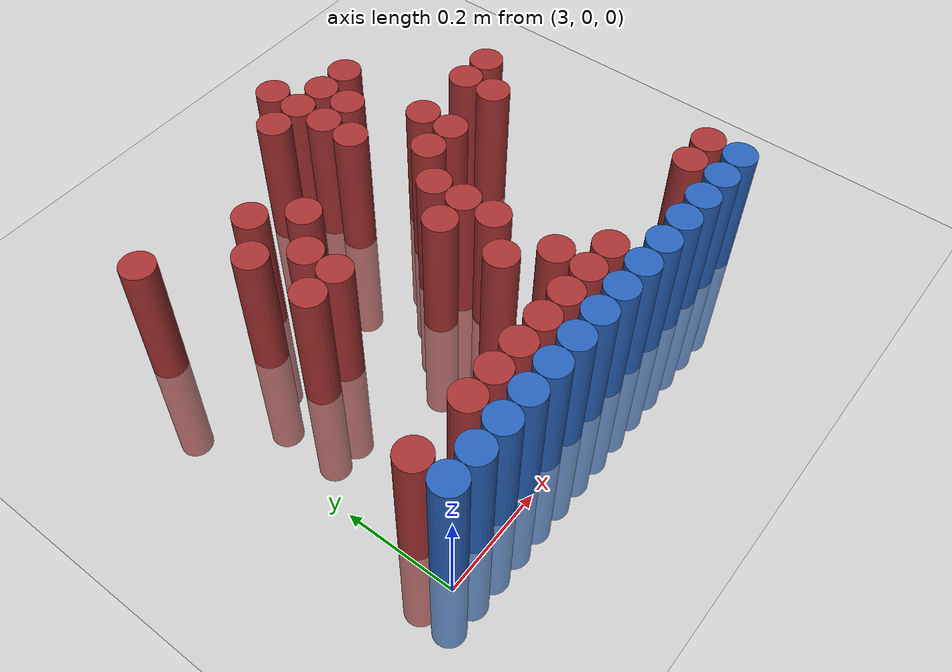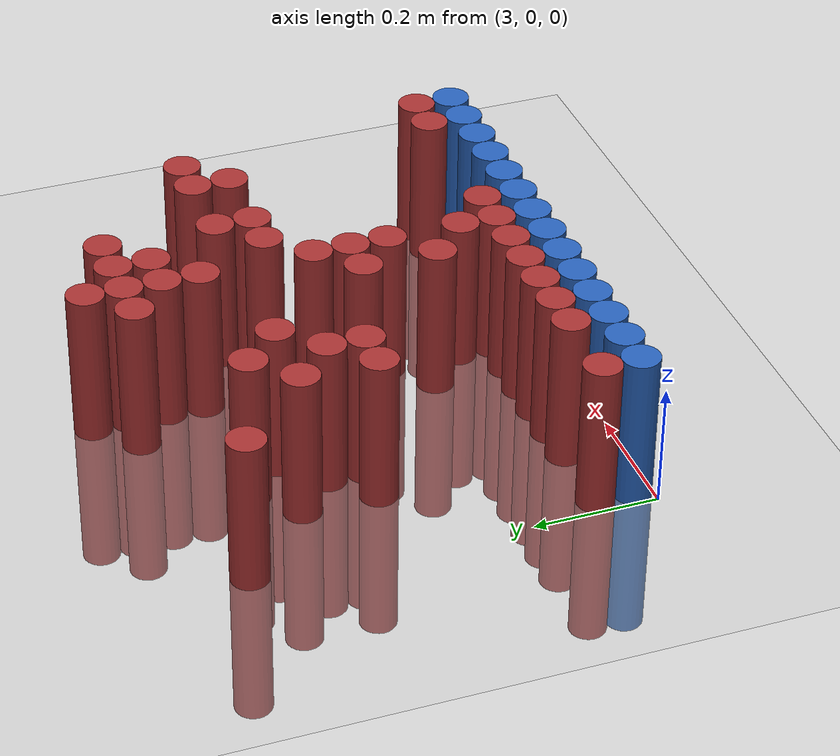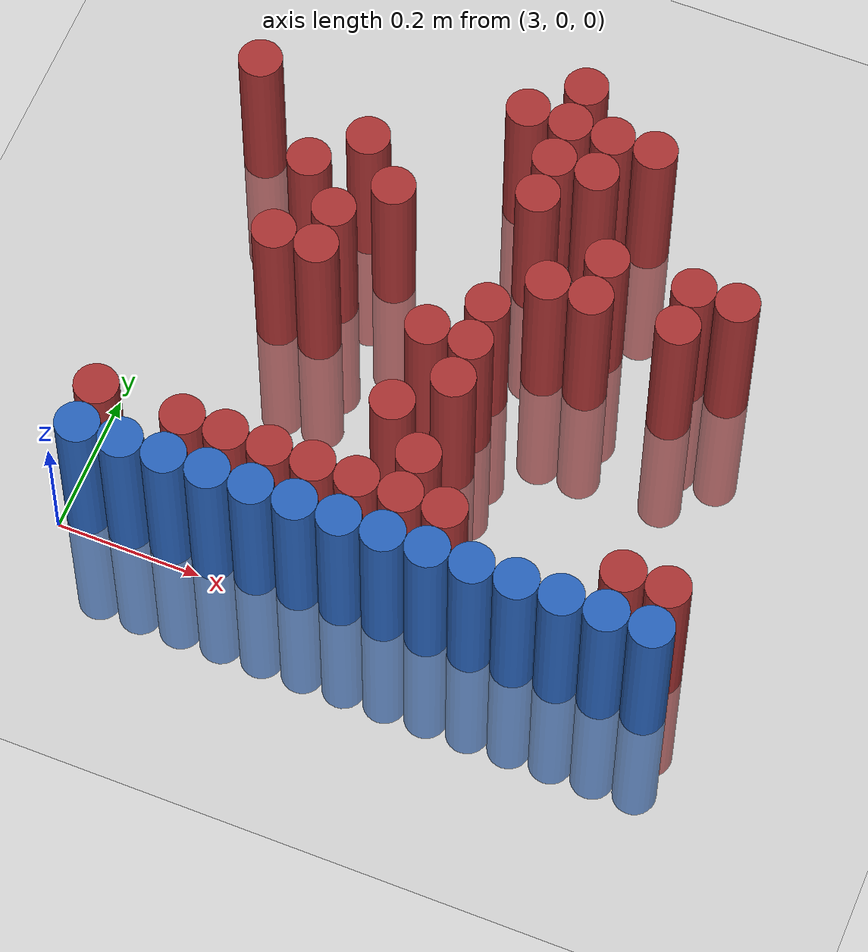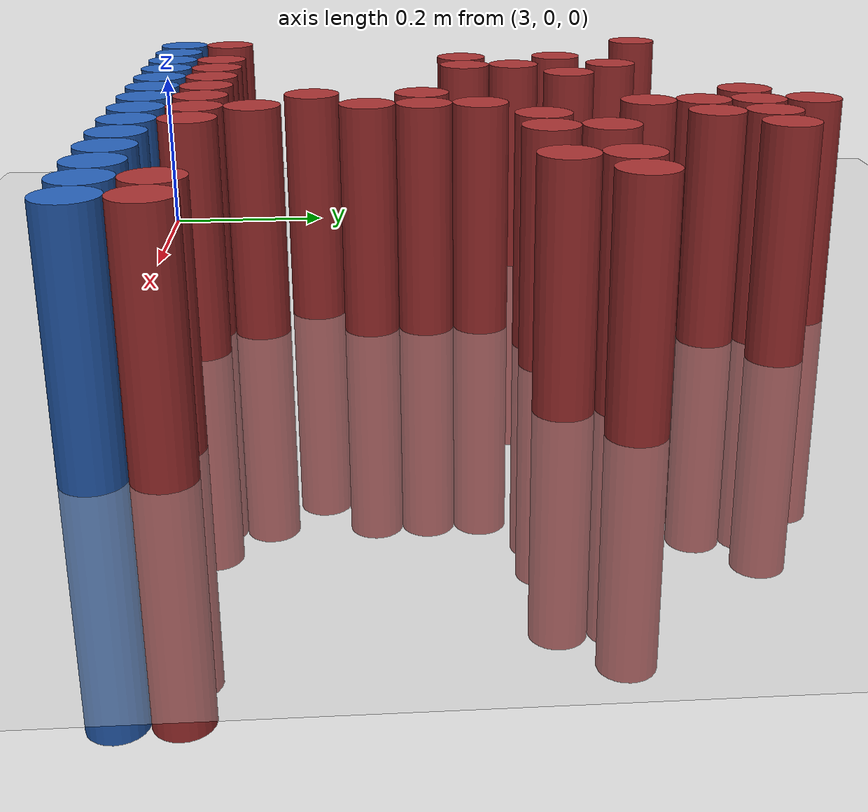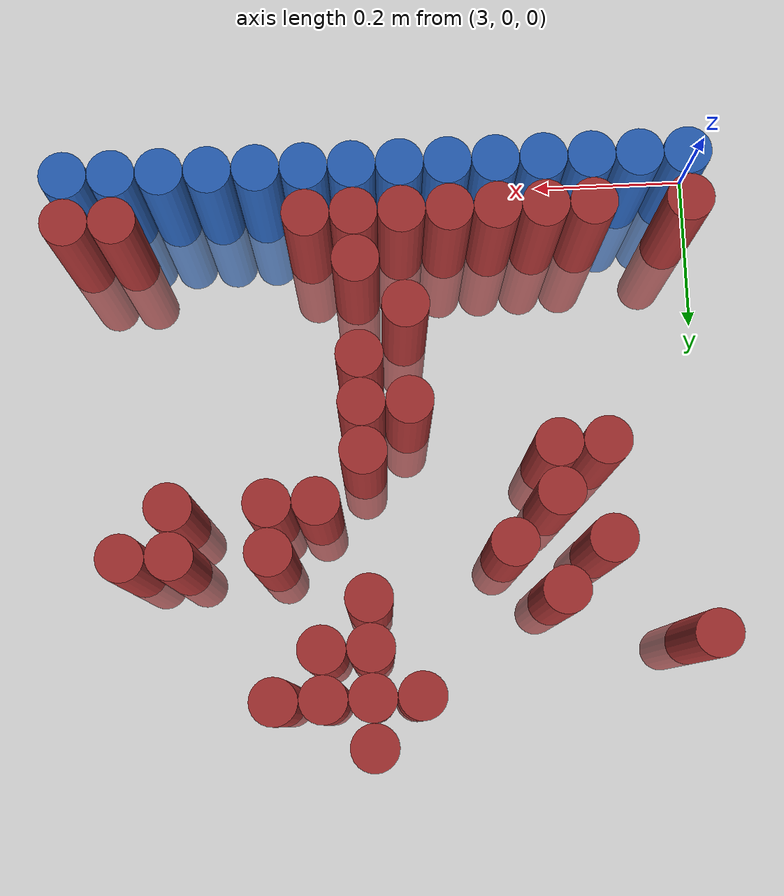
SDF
<sdf version="1.6">
 <world name="default">
  <model name="ground_plane">
   <static>1</static>
   <link name="link">
    <collision name="collision">
     <geometry><plane><normal>0 0 1</normal><size>100 100</size></plane></geometry>
     <surface><friction><ode><mu>100</mu><mu2>50</mu2></ode></friction></surface>
    </collision>
    <visual name="visual">
     <cast_shadows>0</cast_shadows>
     <geometry><plane><normal>0 0 1</normal><size>100 100</size></plane></geometry>
     <material>
      <script><uri>file://media/materials/scripts/gazebo.material</uri><name>Gazebo/Grey</name></script>
     </material>
    </visual>
   </link>
  </model>
  <model name="unit_cylinder_217">
   <static>1</static>
   <pose>3.450000 0.750000 0.000000 0.000000 0.000000 0.000000</pose>
   <link name="link">
    <inertial>
     <mass>1</mass>
     <inertia><ixx>0.145833</ixx><ixy>0</ixy><ixz>0</ixz><iyy>0.145833</iyy><iyz>0</iyz><izz>0.125</izz></inertia>
    </inertial>
    <collision name="collision">
     <geometry><cylinder><radius>0.030000</radius><length>0.5</length></cylinder></geometry>
    </collision>
    <visual name="visual">
     <geometry><cylinder><radius>0.030000</radius><length>0.5</length></cylinder></geometry>
     <material>
      <ambient>0.648000 0.192000 0.192000 1</ambient>
      <diffuse>0.648000 0.192000 0.192000 1</diffuse>
     </material>
     <material>
      <script><name>Gazebo/Grey</name><uri>file://media/materials/scripts/gazebo.material</uri></script>
     </material>
    </visual>
   </link>
  </model>
  <model name="unit_cylinder_228">
   <static>1</static>
   <pose>3.390000 0.690000 0.000000 0.000000 0.000000 0.000000</pose>
   <link name="link">
    <inertial>
     <mass>1</mass>
     <inertia><ixx>0.145833</ixx><ixy>0</ixy><ixz>0</ixz><iyy>0.145833</iyy><iyz>0</iyz><izz>0.125</izz></inertia>
    </inertial>
    <collision name="collision">
     <geometry><cylinder><radius>0.030000</radius><length>0.5</length></cylinder></geometry>
    </collision>
    <visual name="visual">
     <geometry><cylinder><radius>0.030000</radius><length>0.5</length></cylinder></geometry>
     <material>
      <ambient>0.648000 0.192000 0.192000 1</ambient>
      <diffuse>0.648000 0.192000 0.192000 1</diffuse>
     </material>
     <material>
      <script><name>Gazebo/Grey</name><uri>file://media/materials/scripts/gazebo.material</uri></script>
     </material>
    </visual>
   </link>
  </model>
  <model name="unit_cylinder_229">
   <static>1</static>
   <pose>3.450000 0.690000 0.000000 0.000000 0.000000 0.000000</pose>
   <link name="link">
    <inertial>
     <mass>1</mass>
     <inertia><ixx>0.145833</ixx><ixy>0</ixy><ixz>0</ixz><iyy>0.145833</iyy><iyz>0</iyz><izz>0.125</izz></inertia>
    </inertial>
    <collision name="collision">
     <geometry><cylinder><radius>0.030000</radius><length>0.5</length></cylinder></geometry>
    </collision>
    <visual name="visual">
     <geometry><cylinder><radius>0.030000</radius><length>0.5</length></cylinder></geometry>
     <material>
      <ambient>0.648000 0.192000 0.192000 1</ambient>
      <diffuse>0.648000 0.192000 0.192000 1</diffuse>
     </material>
     <material>
      <script><name>Gazebo/Grey</name><uri>file://media/materials/scripts/gazebo.material</uri></script>
     </material>
    </visual>
   </link>
  </model>
  <model name="unit_cylinder_230">
   <static>1</static>
   <pose>3.510000 0.690000 0.000000 0.000000 0.000000 0.000000</pose>
   <link name="link">
    <inertial>
     <mass>1</mass>
     <inertia><ixx>0.145833</ixx><ixy>0</ixy><ixz>0</ixz><iyy>0.145833</iyy><iyz>0</iyz><izz>0.125</izz></inertia>
    </inertial>
    <collision name="collision">
     <geometry><cylinder><radius>0.030000</radius><length>0.5</length></cylinder></geometry>
    </collision>
    <visual name="visual">
     <geometry><cylinder><radius>0.030000</radius><length>0.5</length></cylinder></geometry>
     <material>
      <ambient>0.648000 0.192000 0.192000 1</ambient>
      <diffuse>0.648000 0.192000 0.192000 1</diffuse>
     </material>
     <material>
      <script><name>Gazebo/Grey</name><uri>file://media/materials/scripts/gazebo.material</uri></script>
     </material>
    </visual>
   </link>
  </model>
  <model name="unit_cylinder_231">
   <static>1</static>
   <pose>3.570000 0.690000 0.000000 0.000000 0.000000 0.000000</pose>
   <link name="link">
    <inertial>
     <mass>1</mass>
     <inertia><ixx>0.145833</ixx><ixy>0</ixy><ixz>0</ixz><iyy>0.145833</iyy><iyz>0</iyz><izz>0.125</izz></inertia>
    </inertial>
    <collision name="collision">
     <geometry><cylinder><radius>0.030000</radius><length>0.5</length></cylinder></geometry>
    </collision>
    <visual name="visual">
     <geometry><cylinder><radius>0.030000</radius><length>0.5</length></cylinder></geometry>
     <material>
      <ambient>0.648000 0.192000 0.192000 1</ambient>
      <diffuse>0.648000 0.192000 0.192000 1</diffuse>
     </material>
     <material>
      <script><name>Gazebo/Grey</name><uri>file://media/materials/scripts/gazebo.material</uri></script>
     </material>
    </visual>
   </link>
  </model>
  <model name="unit_cylinder_241">
   <static>1</static>
   <pose>3.030000 0.630000 0.000000 0.000000 0.000000 0.000000</pose>
   <link name="link">
    <inertial>
     <mass>1</mass>
     <inertia><ixx>0.145833</ixx><ixy>0</ixy><ixz>0</ixz><iyy>0.145833</iyy><iyz>0</iyz><izz>0.125</izz></inertia>
    </inertial>
    <collision name="collision">
     <geometry><cylinder><radius>0.030000</radius><length>0.5</length></cylinder></geometry>
    </collision>
    <visual name="visual">
     <geometry><cylinder><radius>0.030000</radius><length>0.5</length></cylinder></geometry>
     <material>
      <ambient>0.648000 0.192000 0.192000 1</ambient>
      <diffuse>0.648000 0.192000 0.192000 1</diffuse>
     </material>
     <material>
      <script><name>Gazebo/Grey</name><uri>file://media/materials/scripts/gazebo.material</uri></script>
     </material>
    </visual>
   </link>
  </model>
  <model name="unit_cylinder_242">
   <static>1</static>
   <pose>3.450000 0.630000 0.000000 0.000000 0.000000 0.000000</pose>
   <link name="link">
    <inertial>
     <mass>1</mass>
     <inertia><ixx>0.145833</ixx><ixy>0</ixy><ixz>0</ixz><iyy>0.145833</iyy><iyz>0</iyz><izz>0.125</izz></inertia>
    </inertial>
    <collision name="collision">
     <geometry><cylinder><radius>0.030000</radius><length>0.5</length></cylinder></geometry>
    </collision>
    <visual name="visual">
     <geometry><cylinder><radius>0.030000</radius><length>0.5</length></cylinder></geometry>
     <material>
      <ambient>0.648000 0.192000 0.192000 1</ambient>
      <diffuse>0.648000 0.192000 0.192000 1</diffuse>
     </material>
     <material>
      <script><name>Gazebo/Grey</name><uri>file://media/materials/scripts/gazebo.material</uri></script>
     </material>
    </visual>
   </link>
  </model>
  <model name="unit_cylinder_243">
   <static>1</static>
   <pose>3.510000 0.630000 0.000000 0.000000 0.000000 0.000000</pose>
   <link name="link">
    <inertial>
     <mass>1</mass>
     <inertia><ixx>0.145833</ixx><ixy>0</ixy><ixz>0</ixz><iyy>0.145833</iyy><iyz>0</iyz><izz>0.125</izz></inertia>
    </inertial>
    <collision name="collision">
     <geometry><cylinder><radius>0.030000</radius><length>0.5</length></cylinder></geometry>
    </collision>
    <visual name="visual">
     <geometry><cylinder><radius>0.030000</radius><length>0.5</length></cylinder></geometry>
     <material>
      <ambient>0.648000 0.192000 0.192000 1</ambient>
      <diffuse>0.648000 0.192000 0.192000 1</diffuse>
     </material>
     <material>
      <script><name>Gazebo/Grey</name><uri>file://media/materials/scripts/gazebo.material</uri></script>
     </material>
    </visual>
   </link>
  </model>
  <model name="unit_cylinder_251">
   <static>1</static>
   <pose>3.210000 0.570000 0.000000 0.000000 0.000000 0.000000</pose>
   <link name="link">
    <inertial>
     <mass>1</mass>
     <inertia><ixx>0.145833</ixx><ixy>0</ixy><ixz>0</ixz><iyy>0.145833</iyy><iyz>0</iyz><izz>0.125</izz></inertia>
    </inertial>
    <collision name="collision">
     <geometry><cylinder><radius>0.030000</radius><length>0.5</length></cylinder></geometry>
    </collision>
    <visual name="visual">
     <geometry><cylinder><radius>0.030000</radius><length>0.5</length></cylinder></geometry>
     <material>
      <ambient>0.648000 0.192000 0.192000 1</ambient>
      <diffuse>0.648000 0.192000 0.192000 1</diffuse>
     </material>
     <material>
      <script><name>Gazebo/Grey</name><uri>file://media/materials/scripts/gazebo.material</uri></script>
     </material>
    </visual>
   </link>
  </model>
  <model name="unit_cylinder_252">
   <static>1</static>
   <pose>3.450000 0.570000 0.000000 0.000000 0.000000 0.000000</pose>
   <link name="link">
    <inertial>
     <mass>1</mass>
     <inertia><ixx>0.145833</ixx><ixy>0</ixy><ixz>0</ixz><iyy>0.145833</iyy><iyz>0</iyz><izz>0.125</izz></inertia>
    </inertial>
    <collision name="collision">
     <geometry><cylinder><radius>0.030000</radius><length>0.5</length></cylinder></geometry>
    </collision>
    <visual name="visual">
     <geometry><cylinder><radius>0.030000</radius><length>0.5</length></cylinder></geometry>
     <material>
      <ambient>0.648000 0.192000 0.192000 1</ambient>
      <diffuse>0.648000 0.192000 0.192000 1</diffuse>
     </material>
     <material>
      <script><name>Gazebo/Grey</name><uri>file://media/materials/scripts/gazebo.material</uri></script>
     </material>
    </visual>
   </link>
  </model>
  <model name="unit_cylinder_259">
   <static>1</static>
   <pose>3.150000 0.510000 0.000000 0.000000 0.000000 0.000000</pose>
   <link name="link">
    <inertial>
     <mass>1</mass>
     <inertia><ixx>0.145833</ixx><ixy>0</ixy><ixz>0</ixz><iyy>0.145833</iyy><iyz>0</iyz><izz>0.125</izz></inertia>
    </inertial>
    <collision name="collision">
     <geometry><cylinder><radius>0.030000</radius><length>0.5</length></cylinder></geometry>
    </collision>
    <visual name="visual">
     <geometry><cylinder><radius>0.030000</radius><length>0.5</length></cylinder></geometry>
     <material>
      <ambient>0.648000 0.192000 0.192000 1</ambient>
      <diffuse>0.648000 0.192000 0.192000 1</diffuse>
     </material>
     <material>
      <script><name>Gazebo/Grey</name><uri>file://media/materials/scripts/gazebo.material</uri></script>
     </material>
    </visual>
   </link>
  </model>
  <model name="unit_cylinder_260">
   <static>1</static>
   <pose>3.270000 0.510000 0.000000 0.000000 0.000000 0.000000</pose>
   <link name="link">
    <inertial>
     <mass>1</mass>
     <inertia><ixx>0.145833</ixx><ixy>0</ixy><ixz>0</ixz><iyy>0.145833</iyy><iyz>0</iyz><izz>0.125</izz></inertia>
    </inertial>
    <collision name="collision">
     <geometry><cylinder><radius>0.030000</radius><length>0.5</length></cylinder></geometry>
    </collision>
    <visual name="visual">
     <geometry><cylinder><radius>0.030000</radius><length>0.5</length></cylinder></geometry>
     <material>
      <ambient>0.648000 0.192000 0.192000 1</ambient>
      <diffuse>0.648000 0.192000 0.192000 1</diffuse>
     </material>
     <material>
      <script><name>Gazebo/Grey</name><uri>file://media/materials/scripts/gazebo.material</uri></script>
     </material>
    </visual>
   </link>
  </model>
  <model name="unit_cylinder_261">
   <static>1</static>
   <pose>3.570000 0.510000 0.000000 0.000000 0.000000 0.000000</pose>
   <link name="link">
    <inertial>
     <mass>1</mass>
     <inertia><ixx>0.145833</ixx><ixy>0</ixy><ixz>0</ixz><iyy>0.145833</iyy><iyz>0</iyz><izz>0.125</izz></inertia>
    </inertial>
    <collision name="collision">
     <geometry><cylinder><radius>0.030000</radius><length>0.5</length></cylinder></geometry>
    </collision>
    <visual name="visual">
     <geometry><cylinder><radius>0.030000</radius><length>0.5</length></cylinder></geometry>
     <material>
      <ambient>0.648000 0.192000 0.192000 1</ambient>
      <diffuse>0.648000 0.192000 0.192000 1</diffuse>
     </material>
     <material>
      <script><name>Gazebo/Grey</name><uri>file://media/materials/scripts/gazebo.material</uri></script>
     </material>
    </visual>
   </link>
  </model>
  <model name="unit_cylinder_262">
   <static>1</static>
   <pose>3.690000 0.510000 0.000000 0.000000 0.000000 0.000000</pose>
   <link name="link">
    <inertial>
     <mass>1</mass>
     <inertia><ixx>0.145833</ixx><ixy>0</ixy><ixz>0</ixz><iyy>0.145833</iyy><iyz>0</iyz><izz>0.125</izz></inertia>
    </inertial>
    <collision name="collision">
     <geometry><cylinder><radius>0.030000</radius><length>0.5</length></cylinder></geometry>
    </collision>
    <visual name="visual">
     <geometry><cylinder><radius>0.030000</radius><length>0.5</length></cylinder></geometry>
     <material>
      <ambient>0.648000 0.192000 0.192000 1</ambient>
      <diffuse>0.648000 0.192000 0.192000 1</diffuse>
     </material>
     <material>
      <script><name>Gazebo/Grey</name><uri>file://media/materials/scripts/gazebo.material</uri></script>
     </material>
    </visual>
   </link>
  </model>
  <model name="unit_cylinder_263">
   <static>1</static>
   <pose>3.750000 0.510000 0.000000 0.000000 0.000000 0.000000</pose>
   <link name="link">
    <inertial>
     <mass>1</mass>
     <inertia><ixx>0.145833</ixx><ixy>0</ixy><ixz>0</ixz><iyy>0.145833</iyy><iyz>0</iyz><izz>0.125</izz></inertia>
    </inertial>
    <collision name="collision">
     <geometry><cylinder><radius>0.030000</radius><length>0.5</length></cylinder></geometry>
    </collision>
    <visual name="visual">
     <geometry><cylinder><radius>0.030000</radius><length>0.5</length></cylinder></geometry>
     <material>
      <ambient>0.648000 0.192000 0.192000 1</ambient>
      <diffuse>0.648000 0.192000 0.192000 1</diffuse>
     </material>
     <material>
      <script><name>Gazebo/Grey</name><uri>file://media/materials/scripts/gazebo.material</uri></script>
     </material>
    </visual>
   </link>
  </model>
  <model name="unit_cylinder_268">
   <static>1</static>
   <pose>3.210000 0.450000 0.000000 0.000000 0.000000 0.000000</pose>
   <link name="link">
    <inertial>
     <mass>1</mass>
     <inertia><ixx>0.145833</ixx><ixy>0</ixy><ixz>0</ixz><iyy>0.145833</iyy><iyz>0</iyz><izz>0.125</izz></inertia>
    </inertial>
    <collision name="collision">
     <geometry><cylinder><radius>0.030000</radius><length>0.5</length></cylinder></geometry>
    </collision>
    <visual name="visual">
     <geometry><cylinder><radius>0.030000</radius><length>0.5</length></cylinder></geometry>
     <material>
      <ambient>0.648000 0.192000 0.192000 1</ambient>
      <diffuse>0.648000 0.192000 0.192000 1</diffuse>
     </material>
     <material>
      <script><name>Gazebo/Grey</name><uri>file://media/materials/scripts/gazebo.material</uri></script>
     </material>
    </visual>
   </link>
  </model>
  <model name="unit_cylinder_269">
   <static>1</static>
   <pose>3.510000 0.450000 0.000000 0.000000 0.000000 0.000000</pose>
   <link name="link">
    <inertial>
     <mass>1</mass>
     <inertia><ixx>0.145833</ixx><ixy>0</ixy><ixz>0</ixz><iyy>0.145833</iyy><iyz>0</iyz><izz>0.125</izz></inertia>
    </inertial>
    <collision name="collision">
     <geometry><cylinder><radius>0.030000</radius><length>0.5</length></cylinder></geometry>
    </collision>
    <visual name="visual">
     <geometry><cylinder><radius>0.030000</radius><length>0.5</length></cylinder></geometry>
     <material>
      <ambient>0.648000 0.192000 0.192000 1</ambient>
      <diffuse>0.648000 0.192000 0.192000 1</diffuse>
     </material>
     <material>
      <script><name>Gazebo/Grey</name><uri>file://media/materials/scripts/gazebo.material</uri></script>
     </material>
    </visual>
   </link>
  </model>
  <model name="unit_cylinder_270">
   <static>1</static>
   <pose>3.570000 0.450000 0.000000 0.000000 0.000000 0.000000</pose>
   <link name="link">
    <inertial>
     <mass>1</mass>
     <inertia><ixx>0.145833</ixx><ixy>0</ixy><ixz>0</ixz><iyy>0.145833</iyy><iyz>0</iyz><izz>0.125</izz></inertia>
    </inertial>
    <collision name="collision">
     <geometry><cylinder><radius>0.030000</radius><length>0.5</length></cylinder></geometry>
    </collision>
    <visual name="visual">
     <geometry><cylinder><radius>0.030000</radius><length>0.5</length></cylinder></geometry>
     <material>
      <ambient>0.648000 0.192000 0.192000 1</ambient>
      <diffuse>0.648000 0.192000 0.192000 1</diffuse>
     </material>
     <material>
      <script><name>Gazebo/Grey</name><uri>file://media/materials/scripts/gazebo.material</uri></script>
     </material>
    </visual>
   </link>
  </model>
  <model name="unit_cylinder_271">
   <static>1</static>
   <pose>3.690000 0.450000 0.000000 0.000000 0.000000 0.000000</pose>
   <link name="link">
    <inertial>
     <mass>1</mass>
     <inertia><ixx>0.145833</ixx><ixy>0</ixy><ixz>0</ixz><iyy>0.145833</iyy><iyz>0</iyz><izz>0.125</izz></inertia>
    </inertial>
    <collision name="collision">
     <geometry><cylinder><radius>0.030000</radius><length>0.5</length></cylinder></geometry>
    </collision>
    <visual name="visual">
     <geometry><cylinder><radius>0.030000</radius><length>0.5</length></cylinder></geometry>
     <material>
      <ambient>0.648000 0.192000 0.192000 1</ambient>
      <diffuse>0.648000 0.192000 0.192000 1</diffuse>
     </material>
     <material>
      <script><name>Gazebo/Grey</name><uri>file://media/materials/scripts/gazebo.material</uri></script>
     </material>
    </visual>
   </link>
  </model>
  <model name="unit_cylinder_278">
   <static>1</static>
   <pose>3.150000 0.390000 0.000000 0.000000 0.000000 0.000000</pose>
   <link name="link">
    <inertial>
     <mass>1</mass>
     <inertia><ixx>0.145833</ixx><ixy>0</ixy><ixz>0</ixz><iyy>0.145833</iyy><iyz>0</iyz><izz>0.125</izz></inertia>
    </inertial>
    <collision name="collision">
     <geometry><cylinder><radius>0.030000</radius><length>0.5</length></cylinder></geometry>
    </collision>
    <visual name="visual">
     <geometry><cylinder><radius>0.030000</radius><length>0.5</length></cylinder></geometry>
     <material>
      <ambient>0.648000 0.192000 0.192000 1</ambient>
      <diffuse>0.648000 0.192000 0.192000 1</diffuse>
     </material>
     <material>
      <script><name>Gazebo/Grey</name><uri>file://media/materials/scripts/gazebo.material</uri></script>
     </material>
    </visual>
   </link>
  </model>
  <model name="unit_cylinder_279">
   <static>1</static>
   <pose>3.210000 0.390000 0.000000 0.000000 0.000000 0.000000</pose>
   <link name="link">
    <inertial>
     <mass>1</mass>
     <inertia><ixx>0.145833</ixx><ixy>0</ixy><ixz>0</ixz><iyy>0.145833</iyy><iyz>0</iyz><izz>0.125</izz></inertia>
    </inertial>
    <collision name="collision">
     <geometry><cylinder><radius>0.030000</radius><length>0.5</length></cylinder></geometry>
    </collision>
    <visual name="visual">
     <geometry><cylinder><radius>0.030000</radius><length>0.5</length></cylinder></geometry>
     <material>
      <ambient>0.648000 0.192000 0.192000 1</ambient>
      <diffuse>0.648000 0.192000 0.192000 1</diffuse>
     </material>
     <material>
      <script><name>Gazebo/Grey</name><uri>file://media/materials/scripts/gazebo.material</uri></script>
     </material>
    </visual>
   </link>
  </model>
  <model name="unit_cylinder_280">
   <static>1</static>
   <pose>3.450000 0.390000 0.000000 0.000000 0.000000 0.000000</pose>
   <link name="link">
    <inertial>
     <mass>1</mass>
     <inertia><ixx>0.145833</ixx><ixy>0</ixy><ixz>0</ixz><iyy>0.145833</iyy><iyz>0</iyz><izz>0.125</izz></inertia>
    </inertial>
    <collision name="collision">
     <geometry><cylinder><radius>0.030000</radius><length>0.5</length></cylinder></geometry>
    </collision>
    <visual name="visual">
     <geometry><cylinder><radius>0.030000</radius><length>0.5</length></cylinder></geometry>
     <material>
      <ambient>0.648000 0.192000 0.192000 1</ambient>
      <diffuse>0.648000 0.192000 0.192000 1</diffuse>
     </material>
     <material>
      <script><name>Gazebo/Grey</name><uri>file://media/materials/scripts/gazebo.material</uri></script>
     </material>
    </visual>
   </link>
  </model>
  <model name="unit_cylinder_285">
   <static>1</static>
   <pose>3.390000 0.330000 0.000000 0.000000 0.000000 0.000000</pose>
   <link name="link">
    <inertial>
     <mass>1</mass>
     <inertia><ixx>0.145833</ixx><ixy>0</ixy><ixz>0</ixz><iyy>0.145833</iyy><iyz>0</iyz><izz>0.125</izz></inertia>
    </inertial>
    <collision name="collision">
     <geometry><cylinder><radius>0.030000</radius><length>0.5</length></cylinder></geometry>
    </collision>
    <visual name="visual">
     <geometry><cylinder><radius>0.030000</radius><length>0.5</length></cylinder></geometry>
     <material>
      <ambient>0.648000 0.192000 0.192000 1</ambient>
      <diffuse>0.648000 0.192000 0.192000 1</diffuse>
     </material>
     <material>
      <script><name>Gazebo/Grey</name><uri>file://media/materials/scripts/gazebo.material</uri></script>
     </material>
    </visual>
   </link>
  </model>
  <model name="unit_cylinder_286">
   <static>1</static>
   <pose>3.450000 0.330000 0.000000 0.000000 0.000000 0.000000</pose>
   <link name="link">
    <inertial>
     <mass>1</mass>
     <inertia><ixx>0.145833</ixx><ixy>0</ixy><ixz>0</ixz><iyy>0.145833</iyy><iyz>0</iyz><izz>0.125</izz></inertia>
    </inertial>
    <collision name="collision">
     <geometry><cylinder><radius>0.030000</radius><length>0.5</length></cylinder></geometry>
    </collision>
    <visual name="visual">
     <geometry><cylinder><radius>0.030000</radius><length>0.5</length></cylinder></geometry>
     <material>
      <ambient>0.648000 0.192000 0.192000 1</ambient>
      <diffuse>0.648000 0.192000 0.192000 1</diffuse>
     </material>
     <material>
      <script><name>Gazebo/Grey</name><uri>file://media/materials/scripts/gazebo.material</uri></script>
     </material>
    </visual>
   </link>
  </model>
  <model name="unit_cylinder_293">
   <static>1</static>
   <pose>3.450000 0.270000 0.000000 0.000000 0.000000 0.000000</pose>
   <link name="link">
    <inertial>
     <mass>1</mass>
     <inertia><ixx>0.145833</ixx><ixy>0</ixy><ixz>0</ixz><iyy>0.145833</iyy><iyz>0</iyz><izz>0.125</izz></inertia>
    </inertial>
    <collision name="collision">
     <geometry><cylinder><radius>0.030000</radius><length>0.5</length></cylinder></geometry>
    </collision>
    <visual name="visual">
     <geometry><cylinder><radius>0.030000</radius><length>0.5</length></cylinder></geometry>
     <material>
      <ambient>0.648000 0.192000 0.192000 1</ambient>
      <diffuse>0.648000 0.192000 0.192000 1</diffuse>
     </material>
     <material>
      <script><name>Gazebo/Grey</name><uri>file://media/materials/scripts/gazebo.material</uri></script>
     </material>
    </visual>
   </link>
  </model>
  <model name="unit_cylinder_299">
   <static>1</static>
   <pose>3.390000 0.210000 0.000000 0.000000 0.000000 0.000000</pose>
   <link name="link">
    <inertial>
     <mass>1</mass>
     <inertia><ixx>0.145833</ixx><ixy>0</ixy><ixz>0</ixz><iyy>0.145833</iyy><iyz>0</iyz><izz>0.125</izz></inertia>
    </inertial>
    <collision name="collision">
     <geometry><cylinder><radius>0.030000</radius><length>0.5</length></cylinder></geometry>
    </collision>
    <visual name="visual">
     <geometry><cylinder><radius>0.030000</radius><length>0.5</length></cylinder></geometry>
     <material>
      <ambient>0.648000 0.192000 0.192000 1</ambient>
      <diffuse>0.648000 0.192000 0.192000 1</diffuse>
     </material>
     <material>
      <script><name>Gazebo/Grey</name><uri>file://media/materials/scripts/gazebo.material</uri></script>
     </material>
    </visual>
   </link>
  </model>
  <model name="unit_cylinder_310">
   <static>1</static>
   <pose>3.450000 0.150000 0.000000 0.000000 0.000000 0.000000</pose>
   <link name="link">
    <inertial>
     <mass>1</mass>
     <inertia><ixx>0.145833</ixx><ixy>0</ixy><ixz>0</ixz><iyy>0.145833</iyy><iyz>0</iyz><izz>0.125</izz></inertia>
    </inertial>
    <collision name="collision">
     <geometry><cylinder><radius>0.030000</radius><length>0.5</length></cylinder></geometry>
    </collision>
    <visual name="visual">
     <geometry><cylinder><radius>0.030000</radius><length>0.5</length></cylinder></geometry>
     <material>
      <ambient>0.648000 0.192000 0.192000 1</ambient>
      <diffuse>0.648000 0.192000 0.192000 1</diffuse>
     </material>
     <material>
      <script><name>Gazebo/Grey</name><uri>file://media/materials/scripts/gazebo.material</uri></script>
     </material>
    </visual>
   </link>
  </model>
  <model name="unit_cylinder_318">
   <static>1</static>
   <pose>3.030000 0.090000 0.000000 0.000000 0.000000 0.000000</pose>
   <link name="link">
    <inertial>
     <mass>1</mass>
     <inertia><ixx>0.145833</ixx><ixy>0</ixy><ixz>0</ixz><iyy>0.145833</iyy><iyz>0</iyz><izz>0.125</izz></inertia>
    </inertial>
    <collision name="collision">
     <geometry><cylinder><radius>0.030000</radius><length>0.5</length></cylinder></geometry>
    </collision>
    <visual name="visual">
     <geometry><cylinder><radius>0.030000</radius><length>0.5</length></cylinder></geometry>
     <material>
      <ambient>0.648000 0.192000 0.192000 1</ambient>
      <diffuse>0.648000 0.192000 0.192000 1</diffuse>
     </material>
     <material>
      <script><name>Gazebo/Grey</name><uri>file://media/materials/scripts/gazebo.material</uri></script>
     </material>
    </visual>
   </link>
  </model>
  <model name="unit_cylinder_319">
   <static>1</static>
   <pose>3.150000 0.090000 0.000000 0.000000 0.000000 0.000000</pose>
   <link name="link">
    <inertial>
     <mass>1</mass>
     <inertia><ixx>0.145833</ixx><ixy>0</ixy><ixz>0</ixz><iyy>0.145833</iyy><iyz>0</iyz><izz>0.125</izz></inertia>
    </inertial>
    <collision name="collision">
     <geometry><cylinder><radius>0.030000</radius><length>0.5</length></cylinder></geometry>
    </collision>
    <visual name="visual">
     <geometry><cylinder><radius>0.030000</radius><length>0.5</length></cylinder></geometry>
     <material>
      <ambient>0.648000 0.192000 0.192000 1</ambient>
      <diffuse>0.648000 0.192000 0.192000 1</diffuse>
     </material>
     <material>
      <script><name>Gazebo/Grey</name><uri>file://media/materials/scripts/gazebo.material</uri></script>
     </material>
    </visual>
   </link>
  </model>
  <model name="unit_cylinder_320">
   <static>1</static>
   <pose>3.210000 0.090000 0.000000 0.000000 0.000000 0.000000</pose>
   <link name="link">
    <inertial>
     <mass>1</mass>
     <inertia><ixx>0.145833</ixx><ixy>0</ixy><ixz>0</ixz><iyy>0.145833</iyy><iyz>0</iyz><izz>0.125</izz></inertia>
    </inertial>
    <collision name="collision">
     <geometry><cylinder><radius>0.030000</radius><length>0.5</length></cylinder></geometry>
    </collision>
    <visual name="visual">
     <geometry><cylinder><radius>0.030000</radius><length>0.5</length></cylinder></geometry>
     <material>
      <ambient>0.648000 0.192000 0.192000 1</ambient>
      <diffuse>0.648000 0.192000 0.192000 1</diffuse>
     </material>
     <material>
      <script><name>Gazebo/Grey</name><uri>file://media/materials/scripts/gazebo.material</uri></script>
     </material>
    </visual>
   </link>
  </model>
  <model name="unit_cylinder_321">
   <static>1</static>
   <pose>3.270000 0.090000 0.000000 0.000000 0.000000 0.000000</pose>
   <link name="link">
    <inertial>
     <mass>1</mass>
     <inertia><ixx>0.145833</ixx><ixy>0</ixy><ixz>0</ixz><iyy>0.145833</iyy><iyz>0</iyz><izz>0.125</izz></inertia>
    </inertial>
    <collision name="collision">
     <geometry><cylinder><radius>0.030000</radius><length>0.5</length></cylinder></geometry>
    </collision>
    <visual name="visual">
     <geometry><cylinder><radius>0.030000</radius><length>0.5</length></cylinder></geometry>
     <material>
      <ambient>0.648000 0.192000 0.192000 1</ambient>
      <diffuse>0.648000 0.192000 0.192000 1</diffuse>
     </material>
     <material>
      <script><name>Gazebo/Grey</name><uri>file://media/materials/scripts/gazebo.material</uri></script>
     </material>
    </visual>
   </link>
  </model>
  <model name="unit_cylinder_322">
   <static>1</static>
   <pose>3.330000 0.090000 0.000000 0.000000 0.000000 0.000000</pose>
   <link name="link">
    <inertial>
     <mass>1</mass>
     <inertia><ixx>0.145833</ixx><ixy>0</ixy><ixz>0</ixz><iyy>0.145833</iyy><iyz>0</iyz><izz>0.125</izz></inertia>
    </inertial>
    <collision name="collision">
     <geometry><cylinder><radius>0.030000</radius><length>0.5</length></cylinder></geometry>
    </collision>
    <visual name="visual">
     <geometry><cylinder><radius>0.030000</radius><length>0.5</length></cylinder></geometry>
     <material>
      <ambient>0.648000 0.192000 0.192000 1</ambient>
      <diffuse>0.648000 0.192000 0.192000 1</diffuse>
     </material>
     <material>
      <script><name>Gazebo/Grey</name><uri>file://media/materials/scripts/gazebo.material</uri></script>
     </material>
    </visual>
   </link>
  </model>
  <model name="unit_cylinder_323">
   <static>1</static>
   <pose>3.390000 0.090000 0.000000 0.000000 0.000000 0.000000</pose>
   <link name="link">
    <inertial>
     <mass>1</mass>
     <inertia><ixx>0.145833</ixx><ixy>0</ixy><ixz>0</ixz><iyy>0.145833</iyy><iyz>0</iyz><izz>0.125</izz></inertia>
    </inertial>
    <collision name="collision">
     <geometry><cylinder><radius>0.030000</radius><length>0.5</length></cylinder></geometry>
    </collision>
    <visual name="visual">
     <geometry><cylinder><radius>0.030000</radius><length>0.5</length></cylinder></geometry>
     <material>
      <ambient>0.648000 0.192000 0.192000 1</ambient>
      <diffuse>0.648000 0.192000 0.192000 1</diffuse>
     </material>
     <material>
      <script><name>Gazebo/Grey</name><uri>file://media/materials/scripts/gazebo.material</uri></script>
     </material>
    </visual>
   </link>
  </model>
  <model name="unit_cylinder_324">
   <static>1</static>
   <pose>3.450000 0.090000 0.000000 0.000000 0.000000 0.000000</pose>
   <link name="link">
    <inertial>
     <mass>1</mass>
     <inertia><ixx>0.145833</ixx><ixy>0</ixy><ixz>0</ixz><iyy>0.145833</iyy><iyz>0</iyz><izz>0.125</izz></inertia>
    </inertial>
    <collision name="collision">
     <geometry><cylinder><radius>0.030000</radius><length>0.5</length></cylinder></geometry>
    </collision>
    <visual name="visual">
     <geometry><cylinder><radius>0.030000</radius><length>0.5</length></cylinder></geometry>
     <material>
      <ambient>0.648000 0.192000 0.192000 1</ambient>
      <diffuse>0.648000 0.192000 0.192000 1</diffuse>
     </material>
     <material>
      <script><name>Gazebo/Grey</name><uri>file://media/materials/scripts/gazebo.material</uri></script>
     </material>
    </visual>
   </link>
  </model>
  <model name="unit_cylinder_325">
   <static>1</static>
   <pose>3.510000 0.090000 0.000000 0.000000 0.000000 0.000000</pose>
   <link name="link">
    <inertial>
     <mass>1</mass>
     <inertia><ixx>0.145833</ixx><ixy>0</ixy><ixz>0</ixz><iyy>0.145833</iyy><iyz>0</iyz><izz>0.125</izz></inertia>
    </inertial>
    <collision name="collision">
     <geometry><cylinder><radius>0.030000</radius><length>0.5</length></cylinder></geometry>
    </collision>
    <visual name="visual">
     <geometry><cylinder><radius>0.030000</radius><length>0.5</length></cylinder></geometry>
     <material>
      <ambient>0.648000 0.192000 0.192000 1</ambient>
      <diffuse>0.648000 0.192000 0.192000 1</diffuse>
     </material>
     <material>
      <script><name>Gazebo/Grey</name><uri>file://media/materials/scripts/gazebo.material</uri></script>
     </material>
    </visual>
   </link>
  </model>
  <model name="unit_cylinder_326">
   <static>1</static>
   <pose>3.750000 0.090000 0.000000 0.000000 0.000000 0.000000</pose>
   <link name="link">
    <inertial>
     <mass>1</mass>
     <inertia><ixx>0.145833</ixx><ixy>0</ixy><ixz>0</ixz><iyy>0.145833</iyy><iyz>0</iyz><izz>0.125</izz></inertia>
    </inertial>
    <collision name="collision">
     <geometry><cylinder><radius>0.030000</radius><length>0.5</length></cylinder></geometry>
    </collision>
    <visual name="visual">
     <geometry><cylinder><radius>0.030000</radius><length>0.5</length></cylinder></geometry>
     <material>
      <ambient>0.648000 0.192000 0.192000 1</ambient>
      <diffuse>0.648000 0.192000 0.192000 1</diffuse>
     </material>
     <material>
      <script><name>Gazebo/Grey</name><uri>file://media/materials/scripts/gazebo.material</uri></script>
     </material>
    </visual>
   </link>
  </model>
  <model name="unit_cylinder_327">
   <static>1</static>
   <pose>3.810000 0.090000 0.000000 0.000000 0.000000 0.000000</pose>
   <link name="link">
    <inertial>
     <mass>1</mass>
     <inertia><ixx>0.145833</ixx><ixy>0</ixy><ixz>0</ixz><iyy>0.145833</iyy><iyz>0</iyz><izz>0.125</izz></inertia>
    </inertial>
    <collision name="collision">
     <geometry><cylinder><radius>0.030000</radius><length>0.5</length></cylinder></geometry>
    </collision>
    <visual name="visual">
     <geometry><cylinder><radius>0.030000</radius><length>0.5</length></cylinder></geometry>
     <material>
      <ambient>0.648000 0.192000 0.192000 1</ambient>
      <diffuse>0.648000 0.192000 0.192000 1</diffuse>
     </material>
     <material>
      <script><name>Gazebo/Grey</name><uri>file://media/materials/scripts/gazebo.material</uri></script>
     </material>
    </visual>
   </link>
  </model>
  <model name="unit_cylinder_344">
   <static>1</static>
   <pose>3.030000 0.030000 0.000000 0.000000 0.000000 0.000000</pose>
   <link name="link">
    <inertial>
     <mass>1</mass>
     <inertia><ixx>0.145833</ixx><ixy>0</ixy><ixz>0</ixz><iyy>0.145833</iyy><iyz>0</iyz><izz>0.125</izz></inertia>
    </inertial>
    <collision name="collision">
     <geometry><cylinder><radius>0.030000</radius><length>0.5</length></cylinder></geometry>
    </collision>
    <visual name="visual">
     <geometry><cylinder><radius>0.030000</radius><length>0.5</length></cylinder></geometry>
     <material>
      <ambient>0.152000 0.379000 0.720000 1</ambient>
      <diffuse>0.152000 0.379000 0.720000 1</diffuse>
     </material>
     <material>
      <script><name>Gazebo/Grey</name><uri>file://media/materials/scripts/gazebo.material</uri></script>
     </material>
    </visual>
   </link>
  </model>
  <model name="unit_cylinder_345">
   <static>1</static>
   <pose>3.090000 0.030000 0.000000 0.000000 0.000000 0.000000</pose>
   <link name="link">
    <inertial>
     <mass>1</mass>
     <inertia><ixx>0.145833</ixx><ixy>0</ixy><ixz>0</ixz><iyy>0.145833</iyy><iyz>0</iyz><izz>0.125</izz></inertia>
    </inertial>
    <collision name="collision">
     <geometry><cylinder><radius>0.030000</radius><length>0.5</length></cylinder></geometry>
    </collision>
    <visual name="visual">
     <geometry><cylinder><radius>0.030000</radius><length>0.5</length></cylinder></geometry>
     <material>
      <ambient>0.152000 0.379000 0.720000 1</ambient>
      <diffuse>0.152000 0.379000 0.720000 1</diffuse>
     </material>
     <material>
      <script><name>Gazebo/Grey</name><uri>file://media/materials/scripts/gazebo.material</uri></script>
     </material>
    </visual>
   </link>
  </model>
  <model name="unit_cylinder_346">
   <static>1</static>
   <pose>3.150000 0.030000 0.000000 0.000000 0.000000 0.000000</pose>
   <link name="link">
    <inertial>
     <mass>1</mass>
     <inertia><ixx>0.145833</ixx><ixy>0</ixy><ixz>0</ixz><iyy>0.145833</iyy><iyz>0</iyz><izz>0.125</izz></inertia>
    </inertial>
    <collision name="collision">
     <geometry><cylinder><radius>0.030000</radius><length>0.5</length></cylinder></geometry>
    </collision>
    <visual name="visual">
     <geometry><cylinder><radius>0.030000</radius><length>0.5</length></cylinder></geometry>
     <material>
      <ambient>0.152000 0.379000 0.720000 1</ambient>
      <diffuse>0.152000 0.379000 0.720000 1</diffuse>
     </material>
     <material>
      <script><name>Gazebo/Grey</name><uri>file://media/materials/scripts/gazebo.material</uri></script>
     </material>
    </visual>
   </link>
  </model>
  <model name="unit_cylinder_347">
   <static>1</static>
   <pose>3.210000 0.030000 0.000000 0.000000 0.000000 0.000000</pose>
   <link name="link">
    <inertial>
     <mass>1</mass>
     <inertia><ixx>0.145833</ixx><ixy>0</ixy><ixz>0</ixz><iyy>0.145833</iyy><iyz>0</iyz><izz>0.125</izz></inertia>
    </inertial>
    <collision name="collision">
     <geometry><cylinder><radius>0.030000</radius><length>0.5</length></cylinder></geometry>
    </collision>
    <visual name="visual">
     <geometry><cylinder><radius>0.030000</radius><length>0.5</length></cylinder></geometry>
     <material>
      <ambient>0.152000 0.379000 0.720000 1</ambient>
      <diffuse>0.152000 0.379000 0.720000 1</diffuse>
     </material>
     <material>
      <script><name>Gazebo/Grey</name><uri>file://media/materials/scripts/gazebo.material</uri></script>
     </material>
    </visual>
   </link>
  </model>
  <model name="unit_cylinder_348">
   <static>1</static>
   <pose>3.270000 0.030000 0.000000 0.000000 0.000000 0.000000</pose>
   <link name="link">
    <inertial>
     <mass>1</mass>
     <inertia><ixx>0.145833</ixx><ixy>0</ixy><ixz>0</ixz><iyy>0.145833</iyy><iyz>0</iyz><izz>0.125</izz></inertia>
    </inertial>
    <collision name="collision">
     <geometry><cylinder><radius>0.030000</radius><length>0.5</length></cylinder></geometry>
    </collision>
    <visual name="visual">
     <geometry><cylinder><radius>0.030000</radius><length>0.5</length></cylinder></geometry>
     <material>
      <ambient>0.152000 0.379000 0.720000 1</ambient>
      <diffuse>0.152000 0.379000 0.720000 1</diffuse>
     </material>
     <material>
      <script><name>Gazebo/Grey</name><uri>file://media/materials/scripts/gazebo.material</uri></script>
     </material>
    </visual>
   </link>
  </model>
  <model name="unit_cylinder_349">
   <static>1</static>
   <pose>3.330000 0.030000 0.000000 0.000000 0.000000 0.000000</pose>
   <link name="link">
    <inertial>
     <mass>1</mass>
     <inertia><ixx>0.145833</ixx><ixy>0</ixy><ixz>0</ixz><iyy>0.145833</iyy><iyz>0</iyz><izz>0.125</izz></inertia>
    </inertial>
    <collision name="collision">
     <geometry><cylinder><radius>0.030000</radius><length>0.5</length></cylinder></geometry>
    </collision>
    <visual name="visual">
     <geometry><cylinder><radius>0.030000</radius><length>0.5</length></cylinder></geometry>
     <material>
      <ambient>0.152000 0.379000 0.720000 1</ambient>
      <diffuse>0.152000 0.379000 0.720000 1</diffuse>
     </material>
     <material>
      <script><name>Gazebo/Grey</name><uri>file://media/materials/scripts/gazebo.material</uri></script>
     </material>
    </visual>
   </link>
  </model>
  <model name="unit_cylinder_350">
   <static>1</static>
   <pose>3.390000 0.030000 0.000000 0.000000 0.000000 0.000000</pose>
   <link name="link">
    <inertial>
     <mass>1</mass>
     <inertia><ixx>0.145833</ixx><ixy>0</ixy><ixz>0</ixz><iyy>0.145833</iyy><iyz>0</iyz><izz>0.125</izz></inertia>
    </inertial>
    <collision name="collision">
     <geometry><cylinder><radius>0.030000</radius><length>0.5</length></cylinder></geometry>
    </collision>
    <visual name="visual">
     <geometry><cylinder><radius>0.030000</radius><length>0.5</length></cylinder></geometry>
     <material>
      <ambient>0.152000 0.379000 0.720000 1</ambient>
      <diffuse>0.152000 0.379000 0.720000 1</diffuse>
     </material>
     <material>
      <script><name>Gazebo/Grey</name><uri>file://media/materials/scripts/gazebo.material</uri></script>
     </material>
    </visual>
   </link>
  </model>
  <model name="unit_cylinder_351">
   <static>1</static>
   <pose>3.450000 0.030000 0.000000 0.000000 0.000000 0.000000</pose>
   <link name="link">
    <inertial>
     <mass>1</mass>
     <inertia><ixx>0.145833</ixx><ixy>0</ixy><ixz>0</ixz><iyy>0.145833</iyy><iyz>0</iyz><izz>0.125</izz></inertia>
    </inertial>
    <collision name="collision">
     <geometry><cylinder><radius>0.030000</radius><length>0.5</length></cylinder></geometry>
    </collision>
    <visual name="visual">
     <geometry><cylinder><radius>0.030000</radius><length>0.5</length></cylinder></geometry>
     <material>
      <ambient>0.152000 0.379000 0.720000 1</ambient>
      <diffuse>0.152000 0.379000 0.720000 1</diffuse>
     </material>
     <material>
      <script><name>Gazebo/Grey</name><uri>file://media/materials/scripts/gazebo.material</uri></script>
     </material>
    </visual>
   </link>
  </model>
  <model name="unit_cylinder_352">
   <static>1</static>
   <pose>3.510000 0.030000 0.000000 0.000000 0.000000 0.000000</pose>
   <link name="link">
    <inertial>
     <mass>1</mass>
     <inertia><ixx>0.145833</ixx><ixy>0</ixy><ixz>0</ixz><iyy>0.145833</iyy><iyz>0</iyz><izz>0.125</izz></inertia>
    </inertial>
    <collision name="collision">
     <geometry><cylinder><radius>0.030000</radius><length>0.5</length></cylinder></geometry>
    </collision>
    <visual name="visual">
     <geometry><cylinder><radius>0.030000</radius><length>0.5</length></cylinder></geometry>
     <material>
      <ambient>0.152000 0.379000 0.720000 1</ambient>
      <diffuse>0.152000 0.379000 0.720000 1</diffuse>
     </material>
     <material>
      <script><name>Gazebo/Grey</name><uri>file://media/materials/scripts/gazebo.material</uri></script>
     </material>
    </visual>
   </link>
  </model>
  <model name="unit_cylinder_353">
   <static>1</static>
   <pose>3.570000 0.030000 0.000000 0.000000 0.000000 0.000000</pose>
   <link name="link">
    <inertial>
     <mass>1</mass>
     <inertia><ixx>0.145833</ixx><ixy>0</ixy><ixz>0</ixz><iyy>0.145833</iyy><iyz>0</iyz><izz>0.125</izz></inertia>
    </inertial>
    <collision name="collision">
     <geometry><cylinder><radius>0.030000</radius><length>0.5</length></cylinder></geometry>
    </collision>
    <visual name="visual">
     <geometry><cylinder><radius>0.030000</radius><length>0.5</length></cylinder></geometry>
     <material>
      <ambient>0.152000 0.379000 0.720000 1</ambient>
      <diffuse>0.152000 0.379000 0.720000 1</diffuse>
     </material>
     <material>
      <script><name>Gazebo/Grey</name><uri>file://media/materials/scripts/gazebo.material</uri></script>
     </material>
    </visual>
   </link>
  </model>
  <model name="unit_cylinder_354">
   <static>1</static>
   <pose>3.630000 0.030000 0.000000 0.000000 0.000000 0.000000</pose>
   <link name="link">
    <inertial>
     <mass>1</mass>
     <inertia><ixx>0.145833</ixx><ixy>0</ixy><ixz>0</ixz><iyy>0.145833</iyy><iyz>0</iyz><izz>0.125</izz></inertia>
    </inertial>
    <collision name="collision">
     <geometry><cylinder><radius>0.030000</radius><length>0.5</length></cylinder></geometry>
    </collision>
    <visual name="visual">
     <geometry><cylinder><radius>0.030000</radius><length>0.5</length></cylinder></geometry>
     <material>
      <ambient>0.152000 0.379000 0.720000 1</ambient>
      <diffuse>0.152000 0.379000 0.720000 1</diffuse>
     </material>
     <material>
      <script><name>Gazebo/Grey</name><uri>file://media/materials/scripts/gazebo.material</uri></script>
     </material>
    </visual>
   </link>
  </model>
  <model name="unit_cylinder_355">
   <static>1</static>
   <pose>3.690000 0.030000 0.000000 0.000000 0.000000 0.000000</pose>
   <link name="link">
    <inertial>
     <mass>1</mass>
     <inertia><ixx>0.145833</ixx><ixy>0</ixy><ixz>0</ixz><iyy>0.145833</iyy><iyz>0</iyz><izz>0.125</izz></inertia>
    </inertial>
    <collision name="collision">
     <geometry><cylinder><radius>0.030000</radius><length>0.5</length></cylinder></geometry>
    </collision>
    <visual name="visual">
     <geometry><cylinder><radius>0.030000</radius><length>0.5</length></cylinder></geometry>
     <material>
      <ambient>0.152000 0.379000 0.720000 1</ambient>
      <diffuse>0.152000 0.379000 0.720000 1</diffuse>
     </material>
     <material>
      <script><name>Gazebo/Grey</name><uri>file://media/materials/scripts/gazebo.material</uri></script>
     </material>
    </visual>
   </link>
  </model>
  <model name="unit_cylinder_356">
   <static>1</static>
   <pose>3.750000 0.030000 0.000000 0.000000 0.000000 0.000000</pose>
   <link name="link">
    <inertial>
     <mass>1</mass>
     <inertia><ixx>0.145833</ixx><ixy>0</ixy><ixz>0</ixz><iyy>0.145833</iyy><iyz>0</iyz><izz>0.125</izz></inertia>
    </inertial>
    <collision name="collision">
     <geometry><cylinder><radius>0.030000</radius><length>0.5</length></cylinder></geometry>
    </collision>
    <visual name="visual">
     <geometry><cylinder><radius>0.030000</radius><length>0.5</length></cylinder></geometry>
     <material>
      <ambient>0.152000 0.379000 0.720000 1</ambient>
      <diffuse>0.152000 0.379000 0.720000 1</diffuse>
     </material>
     <material>
      <script><name>Gazebo/Grey</name><uri>file://media/materials/scripts/gazebo.material</uri></script>
     </material>
    </visual>
   </link>
  </model>
  <model name="unit_cylinder_357">
   <static>1</static>
   <pose>3.810000 0.030000 0.000000 0.000000 0.000000 0.000000</pose>
   <link name="link">
    <inertial>
     <mass>1</mass>
     <inertia><ixx>0.145833</ixx><ixy>0</ixy><ixz>0</ixz><iyy>0.145833</iyy><iyz>0</iyz><izz>0.125</izz></inertia>
    </inertial>
    <collision name="collision">
     <geometry><cylinder><radius>0.030000</radius><length>0.5</length></cylinder></geometry>
    </collision>
    <visual name="visual">
     <geometry><cylinder><radius>0.030000</radius><length>0.5</length></cylinder></geometry>
     <material>
      <ambient>0.152000 0.379000 0.720000 1</ambient>
      <diffuse>0.152000 0.379000 0.720000 1</diffuse>
     </material>
     <material>
      <script><name>Gazebo/Grey</name><uri>file://media/materials/scripts/gazebo.material</uri></script>
     </material>
    </visual>
   </link>
  </model>
 </world>
</sdf>
